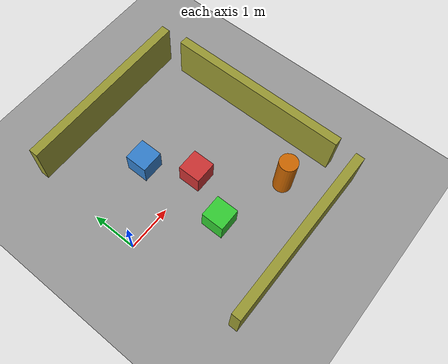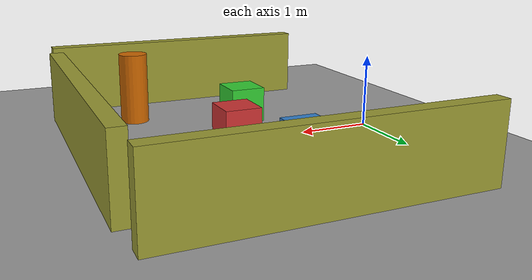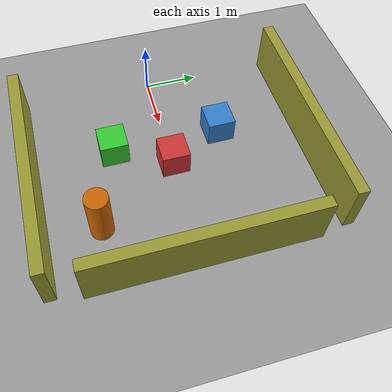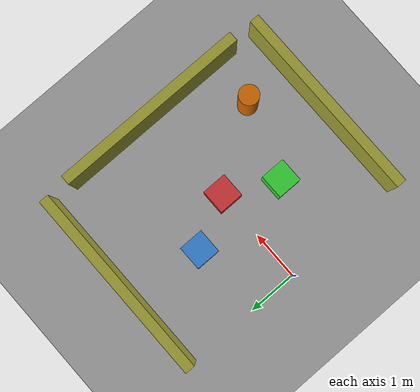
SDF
<?xml version="1.0" ?>
<sdf version="1.8">
  <world name="daro_test_world">

    <!-- Physics -->
    <physics name="1ms" type="ignored">
      <max_step_size>0.001</max_step_size>
      <real_time_factor>1.0</real_time_factor>
    </physics>

    <!-- Required plugins -->
    <plugin filename="gz-sim-physics-system"
            name="gz::sim::systems::Physics"/>
    <plugin filename="gz-sim-user-commands-system"
            name="gz::sim::systems::UserCommands"/>
    <plugin filename="gz-sim-scene-broadcaster-system"
            name="gz::sim::systems::SceneBroadcaster"/>
    <plugin filename="gz-sim-sensors-system"
            name="gz::sim::systems::Sensors">
      <render_engine>ogre2</render_engine>
    </plugin>
    <plugin filename="gz-sim-contact-system"
            name="gz::sim::systems::Contact"/>

    <!-- Lighting -->
    <light name="sun" type="directional">
      <cast_shadows>true</cast_shadows>
      <pose>0 0 10 0 0 0</pose>
      <diffuse>0.8 0.8 0.8 1</diffuse>
      <specular>0.2 0.2 0.2 1</specular>
      <direction>-0.5 0.1 -0.9</direction>
    </light>

    <!-- Ground plane -->
    <model name="ground_plane">
      <static>true</static>
      <link name="link">
        <collision name="collision">
          <geometry>
            <plane>
              <normal>0 0 1</normal>
              <size>20 20</size>
            </plane>
          </geometry>
        </collision>
        <visual name="visual">
          <geometry>
            <plane>
              <normal>0 0 1</normal>
              <size>20 20</size>
            </plane>
          </geometry>
          <material>
            <ambient>0.4 0.4 0.4 1</ambient>
            <diffuse>0.6 0.6 0.6 1</diffuse>
          </material>
        </visual>
      </link>
    </model>

    <!-- ── Obstacles ────────────────────────────────────────────────── -->

    <!-- Box 1: straight ahead -->
    <model name="box_1">
      <static>true</static>
      <pose>2.0 0.0 0.25 0 0 0</pose>
      <link name="link">
        <collision name="collision">
          <geometry><box><size>0.5 0.5 0.5</size></box></geometry>
        </collision>
        <visual name="visual">
          <geometry><box><size>0.5 0.5 0.5</size></box></geometry>
          <material><ambient>0.8 0.2 0.2 1</ambient><diffuse>0.8 0.2 0.2 1</diffuse></material>
        </visual>
      </link>
    </model>

    <!-- Box 2: left side -->
    <model name="box_2">
      <static>true</static>
      <pose>1.5 1.0 0.25 0 0 0</pose>
      <link name="link">
        <collision name="collision">
          <geometry><box><size>0.5 0.5 0.5</size></box></geometry>
        </collision>
        <visual name="visual">
          <geometry><box><size>0.5 0.5 0.5</size></box></geometry>
          <material><ambient>0.2 0.5 0.8 1</ambient><diffuse>0.2 0.5 0.8 1</diffuse></material>
        </visual>
      </link>
    </model>

    <!-- Box 3: right side -->
    <model name="box_3">
      <static>true</static>
      <pose>1.5 -1.0 0.25 0 0 0</pose>
      <link name="link">
        <collision name="collision">
          <geometry><box><size>0.5 0.5 0.5</size></box></geometry>
        </collision>
        <visual name="visual">
          <geometry><box><size>0.5 0.5 0.5</size></box></geometry>
          <material><ambient>0.2 0.8 0.2 1</ambient><diffuse>0.2 0.8 0.2 1</diffuse></material>
        </visual>
      </link>
    </model>

    <!-- Wall: long wall at the back -->
    <model name="wall_back">
      <static>true</static>
      <pose>4.0 0.0 0.5 0 0 0</pose>
      <link name="link">
        <collision name="collision">
          <geometry><box><size>0.2 4.0 1.0</size></box></geometry>
        </collision>
        <visual name="visual">
          <geometry><box><size>0.2 4.0 1.0</size></box></geometry>
          <material><ambient>0.6 0.6 0.2 1</ambient><diffuse>0.6 0.6 0.2 1</diffuse></material>
        </visual>
      </link>
    </model>

    <!-- Wall: left boundary -->
    <model name="wall_left">
      <static>true</static>
      <pose>2.0 2.5 0.5 0 0 0</pose>
      <link name="link">
        <collision name="collision">
          <geometry><box><size>4.0 0.2 1.0</size></box></geometry>
        </collision>
        <visual name="visual">
          <geometry><box><size>4.0 0.2 1.0</size></box></geometry>
          <material><ambient>0.6 0.6 0.2 1</ambient><diffuse>0.6 0.6 0.2 1</diffuse></material>
        </visual>
      </link>
    </model>

    <!-- Wall: right boundary -->
    <model name="wall_right">
      <static>true</static>
      <pose>2.0 -2.5 0.5 0 0 0</pose>
      <link name="link">
        <collision name="collision">
          <geometry><box><size>4.0 0.2 1.0</size></box></geometry>
        </collision>
        <visual name="visual">
          <geometry><box><size>4.0 0.2 1.0</size></box></geometry>
          <material><ambient>0.6 0.6 0.2 1</ambient><diffuse>0.6 0.6 0.2 1</diffuse></material>
        </visual>
      </link>
    </model>

    <!-- Cylinder: pillar in the middle -->
    <model name="pillar">
      <static>true</static>
      <pose>3.0 -1.5 0.5 0 0 0</pose>
      <link name="link">
        <collision name="collision">
          <geometry><cylinder><radius>0.2</radius><length>1.0</length></cylinder></geometry>
        </collision>
        <visual name="visual">
          <geometry><cylinder><radius>0.2</radius><length>1.0</length></cylinder></geometry>
          <material><ambient>0.8 0.4 0.0 1</ambient><diffuse>0.8 0.4 0.0 1</diffuse></material>
        </visual>
      </link>
    </model>

  </world>
</sdf>
